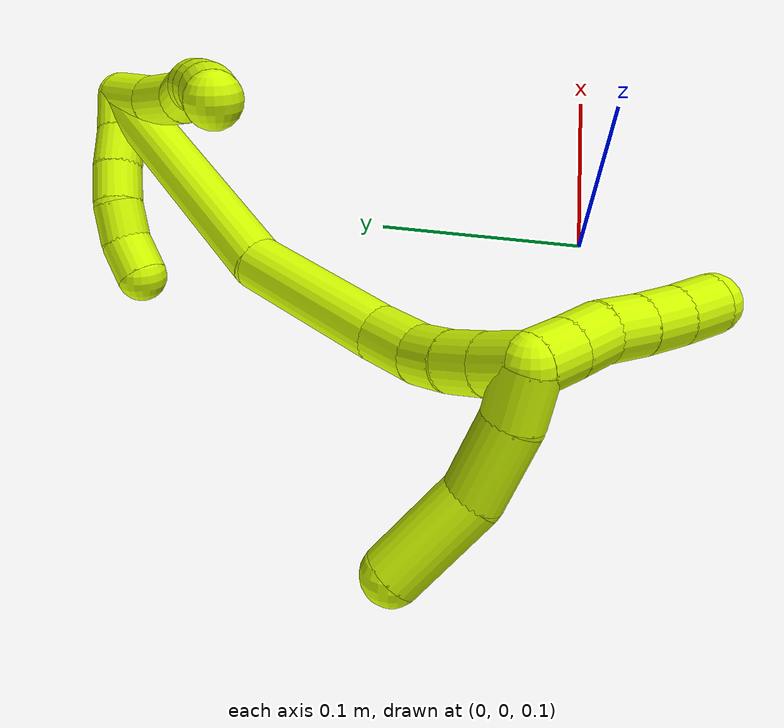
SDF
<sdf version="1.7">
 <world name="default">
  <model name="15">
   <static>0</static>
   <link name="15">
    <collision name="collision-cylinder-e_1_2_8">
     <pose>-0.010584 -0.012186 0.001333 1.46181 -0.712205 -0.643766</pose>
     <geometry><cylinder><radius>0.0125</radius><length>0.032391</length></cylinder></geometry>
     <surface>
      <friction><ode><mu>1.16</mu><mu2>1.16</mu2><slip1>0</slip1><slip2>0</slip2></ode></friction>
      <contact><ode><kp>1e+06</kp><kd>1</kd><max_vel>0</max_vel><min_depth>0.001</min_depth></ode></contact>
     </surface>
    </collision>
    <visual name="visual-cylinder-e_1_2_8">
     <pose>-0.010584 -0.012186 0.001333 1.46181 -0.712205 -0.643766</pose>
     <geometry><cylinder><radius>0.0125</radius><length>0.032391</length></cylinder></geometry>
     <material><ambient>0.835294 1 0 1</ambient></material>
    </visual>
    <collision name="collision-cylinder-e_2_8_9">
     <pose>-0.031523 -0.03557 0.005963 1.28455 -0.725649 -0.553422</pose>
     <geometry><cylinder><radius>0.0125</radius><length>0.031208</length></cylinder></geometry>
     <surface>
      <friction><ode><mu>1.16</mu><mu2>1.16</mu2><slip1>0</slip1><slip2>0</slip2></ode></friction>
      <contact><ode><kp>1e+06</kp><kd>1</kd><max_vel>0</max_vel><min_depth>0.001</min_depth></ode></contact>
     </surface>
    </collision>
    <visual name="visual-cylinder-e_2_8_9">
     <pose>-0.031523 -0.03557 0.005963 1.28455 -0.725649 -0.553422</pose>
     <geometry><cylinder><radius>0.0125</radius><length>0.031208</length></cylinder></geometry>
     <material><ambient>0.835294 1 0 1</ambient></material>
    </visual>
    <collision name="collision-cylinder-e_3_9_10">
     <pose>-0.051413 -0.052529 0.01399 0.883209 -0.907239 -0.453038</pose>
     <geometry><cylinder><radius>0.0125</radius><length>0.024207</length></cylinder></geometry>
     <surface>
      <friction><ode><mu>1.16</mu><mu2>1.16</mu2><slip1>0</slip1><slip2>0</slip2></ode></friction>
      <contact><ode><kp>1e+06</kp><kd>1</kd><max_vel>0</max_vel><min_depth>0.001</min_depth></ode></contact>
     </surface>
    </collision>
    <visual name="visual-cylinder-e_3_9_10">
     <pose>-0.051413 -0.052529 0.01399 0.883209 -0.907239 -0.453038</pose>
     <geometry><cylinder><radius>0.0125</radius><length>0.024207</length></cylinder></geometry>
     <material><ambient>0.835294 1 0 1</ambient></material>
    </visual>
    <collision name="collision-cylinder-e_4_10_11">
     <pose>-0.069967 -0.062356 0.020258 1.20957 -1.12166 -0.819164</pose>
     <geometry><cylinder><radius>0.0125</radius><length>0.020022</length></cylinder></geometry>
     <surface>
      <friction><ode><mu>1.16</mu><mu2>1.16</mu2><slip1>0</slip1><slip2>0</slip2></ode></friction>
      <contact><ode><kp>1e+06</kp><kd>1</kd><max_vel>0</max_vel><min_depth>0.001</min_depth></ode></contact>
     </surface>
    </collision>
    <visual name="visual-cylinder-e_4_10_11">
     <pose>-0.069967 -0.062356 0.020258 1.20957 -1.12166 -0.819164</pose>
     <geometry><cylinder><radius>0.0125</radius><length>0.020022</length></cylinder></geometry>
     <material><ambient>0.835294 1 0 1</ambient></material>
    </visual>
    <collision name="collision-cylinder-e_5_11_12">
     <pose>-0.08822 -0.070679 0.02291 1.31432 -1.1261 -0.906407</pose>
     <geometry><cylinder><radius>0.0125</radius><length>0.02046</length></cylinder></geometry>
     <surface>
      <friction><ode><mu>1.16</mu><mu2>1.16</mu2><slip1>0</slip1><slip2>0</slip2></ode></friction>
      <contact><ode><kp>1e+06</kp><kd>1</kd><max_vel>0</max_vel><min_depth>0.001</min_depth></ode></contact>
     </surface>
    </collision>
    <visual name="visual-cylinder-e_5_11_12">
     <pose>-0.08822 -0.070679 0.02291 1.31432 -1.1261 -0.906407</pose>
     <geometry><cylinder><radius>0.0125</radius><length>0.02046</length></cylinder></geometry>
     <material><ambient>0.835294 1 0 1</ambient></material>
    </visual>
    <collision name="collision-cylinder-e_6_12_6">
     <pose>-0.107568 -0.078871 0.024315 1.49766 -1.19878 -1.13154</pose>
     <geometry><cylinder><radius>0.0125</radius><length>0.021712</length></cylinder></geometry>
     <surface>
      <friction><ode><mu>1.16</mu><mu2>1.16</mu2><slip1>0</slip1><slip2>0</slip2></ode></friction>
      <contact><ode><kp>1e+06</kp><kd>1</kd><max_vel>0</max_vel><min_depth>0.001</min_depth></ode></contact>
     </surface>
    </collision>
    <visual name="visual-cylinder-e_6_12_6">
     <pose>-0.107568 -0.078871 0.024315 1.49766 -1.19878 -1.13154</pose>
     <geometry><cylinder><radius>0.0125</radius><length>0.021712</length></cylinder></geometry>
     <material><ambient>0.835294 1 0 1</ambient></material>
    </visual>
    <collision name="collision-cylinder-e_1_2_13">
     <pose>-0.005798 -0.001255 -0.008051 2.98696 -0.618444 -2.66577</pose>
     <geometry><cylinder><radius>0.0125</radius><length>0.02</length></cylinder></geometry>
     <surface>
      <friction><ode><mu>1.16</mu><mu2>1.16</mu2><slip1>0</slip1><slip2>0</slip2></ode></friction>
      <contact><ode><kp>1e+06</kp><kd>1</kd><max_vel>0</max_vel><min_depth>0.001</min_depth></ode></contact>
     </surface>
    </collision>
    <visual name="visual-cylinder-e_1_2_13">
     <pose>-0.005798 -0.001255 -0.008051 2.98696 -0.618444 -2.66577</pose>
     <geometry><cylinder><radius>0.0125</radius><length>0.02</length></cylinder></geometry>
     <material><ambient>0.835294 1 0 1</ambient></material>
    </visual>
    <collision name="collision-cylinder-e_2_13_14">
     <pose>-0.01765 -0.002764 -0.024056 3.10959 -0.650388 -3.04675</pose>
     <geometry><cylinder><radius>0.0125</radius><length>0.02</length></cylinder></geometry>
     <surface>
      <friction><ode><mu>1.16</mu><mu2>1.16</mu2><slip1>0</slip1><slip2>0</slip2></ode></friction>
      <contact><ode><kp>1e+06</kp><kd>1</kd><max_vel>0</max_vel><min_depth>0.001</min_depth></ode></contact>
     </surface>
    </collision>
    <visual name="visual-cylinder-e_2_13_14">
     <pose>-0.01765 -0.002764 -0.024056 3.10959 -0.650388 -3.04675</pose>
     <geometry><cylinder><radius>0.0125</radius><length>0.02</length></cylinder></geometry>
     <material><ambient>0.835294 1 0 1</ambient></material>
    </visual>
    <collision name="collision-cylinder-e_3_14_15">
     <pose>-0.029581 -0.004536 -0.039958 2.953 -0.628041 -2.57483</pose>
     <geometry><cylinder><radius>0.0125</radius><length>0.02</length></cylinder></geometry>
     <surface>
      <friction><ode><mu>1.16</mu><mu2>1.16</mu2><slip1>0</slip1><slip2>0</slip2></ode></friction>
      <contact><ode><kp>1e+06</kp><kd>1</kd><max_vel>0</max_vel><min_depth>0.001</min_depth></ode></contact>
     </surface>
    </collision>
    <visual name="visual-cylinder-e_3_14_15">
     <pose>-0.029581 -0.004536 -0.039958 2.953 -0.628041 -2.57483</pose>
     <geometry><cylinder><radius>0.0125</radius><length>0.02</length></cylinder></geometry>
     <material><ambient>0.835294 1 0 1</ambient></material>
    </visual>
    <collision name="collision-cylinder-e_4_15_16">
     <pose>-0.039409 -0.008799 -0.056673 2.83808 -0.406304 -1.86434</pose>
     <geometry><cylinder><radius>0.0125</radius><length>0.02</length></cylinder></geometry>
     <surface>
      <friction><ode><mu>1.16</mu><mu2>1.16</mu2><slip1>0</slip1><slip2>0</slip2></ode></friction>
      <contact><ode><kp>1e+06</kp><kd>1</kd><max_vel>0</max_vel><min_depth>0.001</min_depth></ode></contact>
     </surface>
    </collision>
    <visual name="visual-cylinder-e_4_15_16">
     <pose>-0.039409 -0.008799 -0.056673 2.83808 -0.406304 -1.86434</pose>
     <geometry><cylinder><radius>0.0125</radius><length>0.02</length></cylinder></geometry>
     <material><ambient>0.835294 1 0 1</ambient></material>
    </visual>
    <collision name="collision-cylinder-e_5_16_5">
     <pose>-0.047928 -0.016663 -0.072715 2.52856 -0.47425 -1.30429</pose>
     <geometry><cylinder><radius>0.0125</radius><length>0.02</length></cylinder></geometry>
     <surface>
      <friction><ode><mu>1.16</mu><mu2>1.16</mu2><slip1>0</slip1><slip2>0</slip2></ode></friction>
      <contact><ode><kp>1e+06</kp><kd>1</kd><max_vel>0</max_vel><min_depth>0.001</min_depth></ode></contact>
     </surface>
    </collision>
    <visual name="visual-cylinder-e_5_16_5">
     <pose>-0.047928 -0.016663 -0.072715 2.52856 -0.47425 -1.30429</pose>
     <geometry><cylinder><radius>0.0125</radius><length>0.02</length></cylinder></geometry>
     <material><ambient>0.835294 1 0 1</ambient></material>
    </visual>
    <collision name="collision-cylinder-e_1_2_17">
     <pose>-0.044622 -0.045628 -0.027819 2.11831 -0.695721 -1.14678</pose>
     <geometry><cylinder><radius>0.0125</radius><length>0.13924</length></cylinder></geometry>
     <surface>
      <friction><ode><mu>1.16</mu><mu2>1.16</mu2><slip1>0</slip1><slip2>0</slip2></ode></friction>
      <contact><ode><kp>1e+06</kp><kd>1</kd><max_vel>0</max_vel><min_depth>0.001</min_depth></ode></contact>
     </surface>
    </collision>
    <visual name="visual-cylinder-e_1_2_17">
     <pose>-0.044622 -0.045628 -0.027819 2.11831 -0.695721 -1.14678</pose>
     <geometry><cylinder><radius>0.0125</radius><length>0.13924</length></cylinder></geometry>
     <material><ambient>0.835294 1 0 1</ambient></material>
    </visual>
    <collision name="collision-cylinder-e_2_17_18">
     <pose>-0.109554 -0.121523 -0.062423 1.79132 -0.579716 -0.713193</pose>
     <geometry><cylinder><radius>0.0125</radius><length>0.074151</length></cylinder></geometry>
     <surface>
      <friction><ode><mu>1.16</mu><mu2>1.16</mu2><slip1>0</slip1><slip2>0</slip2></ode></friction>
      <contact><ode><kp>1e+06</kp><kd>1</kd><max_vel>0</max_vel><min_depth>0.001</min_depth></ode></contact>
     </surface>
    </collision>
    <visual name="visual-cylinder-e_2_17_18">
     <pose>-0.109554 -0.121523 -0.062423 1.79132 -0.579716 -0.713193</pose>
     <geometry><cylinder><radius>0.0125</radius><length>0.074151</length></cylinder></geometry>
     <material><ambient>0.835294 1 0 1</ambient></material>
    </visual>
    <collision name="collision-cylinder-e_3_18_19">
     <pose>-0.139112 -0.161171 -0.069081 1.55728 -0.778237 -0.768796</pose>
     <geometry><cylinder><radius>0.0125</radius><length>0.026348</length></cylinder></geometry>
     <surface>
      <friction><ode><mu>1.16</mu><mu2>1.16</mu2><slip1>0</slip1><slip2>0</slip2></ode></friction>
      <contact><ode><kp>1e+06</kp><kd>1</kd><max_vel>0</max_vel><min_depth>0.001</min_depth></ode></contact>
     </surface>
    </collision>
    <visual name="visual-cylinder-e_3_18_19">
     <pose>-0.139112 -0.161171 -0.069081 1.55728 -0.778237 -0.768796</pose>
     <geometry><cylinder><radius>0.0125</radius><length>0.026348</length></cylinder></geometry>
     <material><ambient>0.835294 1 0 1</ambient></material>
    </visual>
    <collision name="collision-cylinder-e_4_19_20">
     <pose>-0.155655 -0.177079 -0.066585 1.22273 -0.810026 -0.583845</pose>
     <geometry><cylinder><radius>0.0125</radius><length>0.020144</length></cylinder></geometry>
     <surface>
      <friction><ode><mu>1.16</mu><mu2>1.16</mu2><slip1>0</slip1><slip2>0</slip2></ode></friction>
      <contact><ode><kp>1e+06</kp><kd>1</kd><max_vel>0</max_vel><min_depth>0.001</min_depth></ode></contact>
     </surface>
    </collision>
    <visual name="visual-cylinder-e_4_19_20">
     <pose>-0.155655 -0.177079 -0.066585 1.22273 -0.810026 -0.583845</pose>
     <geometry><cylinder><radius>0.0125</radius><length>0.020144</length></cylinder></geometry>
     <material><ambient>0.835294 1 0 1</ambient></material>
    </visual>
    <collision name="collision-cylinder-e_5_20_21">
     <pose>-0.169383 -0.190731 -0.061208 1.17107 -0.693854 -0.470612</pose>
     <geometry><cylinder><radius>0.0125</radius><length>0.020117</length></cylinder></geometry>
     <surface>
      <friction><ode><mu>1.16</mu><mu2>1.16</mu2><slip1>0</slip1><slip2>0</slip2></ode></friction>
      <contact><ode><kp>1e+06</kp><kd>1</kd><max_vel>0</max_vel><min_depth>0.001</min_depth></ode></contact>
     </surface>
    </collision>
    <visual name="visual-cylinder-e_5_20_21">
     <pose>-0.169383 -0.190731 -0.061208 1.17107 -0.693854 -0.470612</pose>
     <geometry><cylinder><radius>0.0125</radius><length>0.020117</length></cylinder></geometry>
     <material><ambient>0.835294 1 0 1</ambient></material>
    </visual>
    <collision name="collision-cylinder-e_6_21_1">
     <pose>-0.182094 -0.204871 -0.05483 1.12332 -0.678841 -0.437262</pose>
     <geometry><cylinder><radius>0.0125</radius><length>0.020001</length></cylinder></geometry>
     <surface>
      <friction><ode><mu>1.16</mu><mu2>1.16</mu2><slip1>0</slip1><slip2>0</slip2></ode></friction>
      <contact><ode><kp>1e+06</kp><kd>1</kd><max_vel>0</max_vel><min_depth>0.001</min_depth></ode></contact>
     </surface>
    </collision>
    <visual name="visual-cylinder-e_6_21_1">
     <pose>-0.182094 -0.204871 -0.05483 1.12332 -0.678841 -0.437262</pose>
     <geometry><cylinder><radius>0.0125</radius><length>0.020001</length></cylinder></geometry>
     <material><ambient>0.835294 1 0 1</ambient></material>
    </visual>
    <collision name="collision-cylinder-e_1_1_22">
     <pose>-0.180863 -0.21849 -0.051552 1.58433 0.849599 0.859805</pose>
     <geometry><cylinder><radius>0.0125</radius><length>0.02</length></cylinder></geometry>
     <surface>
      <friction><ode><mu>1.16</mu><mu2>1.16</mu2><slip1>0</slip1><slip2>0</slip2></ode></friction>
      <contact><ode><kp>1e+06</kp><kd>1</kd><max_vel>0</max_vel><min_depth>0.001</min_depth></ode></contact>
     </surface>
    </collision>
    <visual name="visual-cylinder-e_1_1_22">
     <pose>-0.180863 -0.21849 -0.051552 1.58433 0.849599 0.859805</pose>
     <geometry><cylinder><radius>0.0125</radius><length>0.02</length></cylinder></geometry>
     <material><ambient>0.835294 1 0 1</ambient></material>
    </visual>
    <collision name="collision-cylinder-e_2_22_23">
     <pose>-0.165895 -0.231744 -0.051275 1.51584 0.841698 0.801446</pose>
     <geometry><cylinder><radius>0.0125</radius><length>0.02</length></cylinder></geometry>
     <surface>
      <friction><ode><mu>1.16</mu><mu2>1.16</mu2><slip1>0</slip1><slip2>0</slip2></ode></friction>
      <contact><ode><kp>1e+06</kp><kd>1</kd><max_vel>0</max_vel><min_depth>0.001</min_depth></ode></contact>
     </surface>
    </collision>
    <visual name="visual-cylinder-e_2_22_23">
     <pose>-0.165895 -0.231744 -0.051275 1.51584 0.841698 0.801446</pose>
     <geometry><cylinder><radius>0.0125</radius><length>0.02</length></cylinder></geometry>
     <material><ambient>0.835294 1 0 1</ambient></material>
    </visual>
    <collision name="collision-cylinder-e_3_23_24">
     <pose>-0.152336 -0.246279 -0.051709 1.67187 0.656194 0.720466</pose>
     <geometry><cylinder><radius>0.0125</radius><length>0.02</length></cylinder></geometry>
     <surface>
      <friction><ode><mu>1.16</mu><mu2>1.16</mu2><slip1>0</slip1><slip2>0</slip2></ode></friction>
      <contact><ode><kp>1e+06</kp><kd>1</kd><max_vel>0</max_vel><min_depth>0.001</min_depth></ode></contact>
     </surface>
    </collision>
    <visual name="visual-cylinder-e_3_23_24">
     <pose>-0.152336 -0.246279 -0.051709 1.67187 0.656194 0.720466</pose>
     <geometry><cylinder><radius>0.0125</radius><length>0.02</length></cylinder></geometry>
     <material><ambient>0.835294 1 0 1</ambient></material>
    </visual>
    <collision name="collision-cylinder-e_4_24_25">
     <pose>-0.139966 -0.261947 -0.052781 1.60576 0.677656 0.699881</pose>
     <geometry><cylinder><radius>0.0125</radius><length>0.02</length></cylinder></geometry>
     <surface>
      <friction><ode><mu>1.16</mu><mu2>1.16</mu2><slip1>0</slip1><slip2>0</slip2></ode></friction>
      <contact><ode><kp>1e+06</kp><kd>1</kd><max_vel>0</max_vel><min_depth>0.001</min_depth></ode></contact>
     </surface>
    </collision>
    <visual name="visual-cylinder-e_4_24_25">
     <pose>-0.139966 -0.261947 -0.052781 1.60576 0.677656 0.699881</pose>
     <geometry><cylinder><radius>0.0125</radius><length>0.02</length></cylinder></geometry>
     <material><ambient>0.835294 1 0 1</ambient></material>
    </visual>
    <collision name="collision-cylinder-e_5_25_4">
     <pose>-0.127628 -0.277666 -0.052569 1.5099 0.652081 0.615995</pose>
     <geometry><cylinder><radius>0.0125</radius><length>0.02</length></cylinder></geometry>
     <surface>
      <friction><ode><mu>1.16</mu><mu2>1.16</mu2><slip1>0</slip1><slip2>0</slip2></ode></friction>
      <contact><ode><kp>1e+06</kp><kd>1</kd><max_vel>0</max_vel><min_depth>0.001</min_depth></ode></contact>
     </surface>
    </collision>
    <visual name="visual-cylinder-e_5_25_4">
     <pose>-0.127628 -0.277666 -0.052569 1.5099 0.652081 0.615995</pose>
     <geometry><cylinder><radius>0.0125</radius><length>0.02</length></cylinder></geometry>
     <material><ambient>0.835294 1 0 1</ambient></material>
    </visual>
    <collision name="collision-cylinder-e_1_1_26">
     <pose>-0.189538 -0.209556 -0.06224 -2.92852 -0.105206 0.914999</pose>
     <geometry><cylinder><radius>0.0125</radius><length>0.022176</length></cylinder></geometry>
     <surface>
      <friction><ode><mu>1.16</mu><mu2>1.16</mu2><slip1>0</slip1><slip2>0</slip2></ode></friction>
      <contact><ode><kp>1e+06</kp><kd>1</kd><max_vel>0</max_vel><min_depth>0.001</min_depth></ode></contact>
     </surface>
    </collision>
    <visual name="visual-cylinder-e_1_1_26">
     <pose>-0.189538 -0.209556 -0.06224 -2.92852 -0.105206 0.914999</pose>
     <geometry><cylinder><radius>0.0125</radius><length>0.022176</length></cylinder></geometry>
     <material><ambient>0.835294 1 0 1</ambient></material>
    </visual>
    <collision name="collision-cylinder-e_2_26_27">
     <pose>-0.19209 -0.20068 -0.088505 -2.74178 -0.082332 0.401115</pose>
     <geometry><cylinder><radius>0.0125</radius><length>0.033742</length></cylinder></geometry>
     <surface>
      <friction><ode><mu>1.16</mu><mu2>1.16</mu2><slip1>0</slip1><slip2>0</slip2></ode></friction>
      <contact><ode><kp>1e+06</kp><kd>1</kd><max_vel>0</max_vel><min_depth>0.001</min_depth></ode></contact>
     </surface>
    </collision>
    <visual name="visual-cylinder-e_2_26_27">
     <pose>-0.19209 -0.20068 -0.088505 -2.74178 -0.082332 0.401115</pose>
     <geometry><cylinder><radius>0.0125</radius><length>0.033742</length></cylinder></geometry>
     <material><ambient>0.835294 1 0 1</ambient></material>
    </visual>
    <collision name="collision-cylinder-e_3_27_3">
     <pose>-0.197112 -0.179598 -0.120156 -2.40914 -0.165687 0.426418</pose>
     <geometry><cylinder><radius>0.0125</radius><length>0.044083</length></cylinder></geometry>
     <surface>
      <friction><ode><mu>1.16</mu><mu2>1.16</mu2><slip1>0</slip1><slip2>0</slip2></ode></friction>
      <contact><ode><kp>1e+06</kp><kd>1</kd><max_vel>0</max_vel><min_depth>0.001</min_depth></ode></contact>
     </surface>
    </collision>
    <visual name="visual-cylinder-e_3_27_3">
     <pose>-0.197112 -0.179598 -0.120156 -2.40914 -0.165687 0.426418</pose>
     <geometry><cylinder><radius>0.0125</radius><length>0.044083</length></cylinder></geometry>
     <material><ambient>0.835294 1 0 1</ambient></material>
    </visual>
    <collision name="collision-sphere-3">
     <pose>-0.200748 -0.165061 -0.13632 0 -0 0</pose>
     <geometry><sphere><radius>0.0125</radius></sphere></geometry>
     <surface>
      <friction><ode><mu>1.16</mu><mu2>1.16</mu2><slip1>0</slip1><slip2>0</slip2></ode></friction>
      <contact><ode><kp>1e+06</kp><kd>1</kd><max_vel>0</max_vel><min_depth>0.001</min_depth></ode></contact>
     </surface>
    </collision>
    <visual name="visual-sphere-3">
     <pose>-0.200748 -0.165061 -0.13632 0 -0 0</pose>
     <geometry><sphere><radius>0.0125</radius></sphere></geometry>
     <material><ambient>0.835294 1 0 1</ambient></material>
    </visual>
    <collision name="collision-sphere-27">
     <pose>-0.193477 -0.194135 -0.103992 0 -0 0</pose>
     <geometry><sphere><radius>0.0125</radius></sphere></geometry>
     <surface>
      <friction><ode><mu>1.16</mu><mu2>1.16</mu2><slip1>0</slip1><slip2>0</slip2></ode></friction>
      <contact><ode><kp>1e+06</kp><kd>1</kd><max_vel>0</max_vel><min_depth>0.001</min_depth></ode></contact>
     </surface>
    </collision>
    <visual name="visual-sphere-27">
     <pose>-0.193477 -0.194135 -0.103992 0 -0 0</pose>
     <geometry><sphere><radius>0.0125</radius></sphere></geometry>
     <material><ambient>0.835294 1 0 1</ambient></material>
    </visual>
    <collision name="collision-sphere-26">
     <pose>-0.190702 -0.207224 -0.073017 0 -0 0</pose>
     <geometry><sphere><radius>0.0125</radius></sphere></geometry>
     <surface>
      <friction><ode><mu>1.16</mu><mu2>1.16</mu2><slip1>0</slip1><slip2>0</slip2></ode></friction>
      <contact><ode><kp>1e+06</kp><kd>1</kd><max_vel>0</max_vel><min_depth>0.001</min_depth></ode></contact>
     </surface>
    </collision>
    <visual name="visual-sphere-26">
     <pose>-0.190702 -0.207224 -0.073017 0 -0 0</pose>
     <geometry><sphere><radius>0.0125</radius></sphere></geometry>
     <material><ambient>0.835294 1 0 1</ambient></material>
    </visual>
    <collision name="collision-sphere-4">
     <pose>-0.121559 -0.2856 -0.052086 0 -0 0</pose>
     <geometry><sphere><radius>0.0125</radius></sphere></geometry>
     <surface>
      <friction><ode><mu>1.16</mu><mu2>1.16</mu2><slip1>0</slip1><slip2>0</slip2></ode></friction>
      <contact><ode><kp>1e+06</kp><kd>1</kd><max_vel>0</max_vel><min_depth>0.001</min_depth></ode></contact>
     </surface>
    </collision>
    <visual name="visual-sphere-4">
     <pose>-0.121559 -0.2856 -0.052086 0 -0 0</pose>
     <geometry><sphere><radius>0.0125</radius></sphere></geometry>
     <material><ambient>0.835294 1 0 1</ambient></material>
    </visual>
    <collision name="collision-sphere-25">
     <pose>-0.133696 -0.269733 -0.053053 0 -0 0</pose>
     <geometry><sphere><radius>0.0125</radius></sphere></geometry>
     <surface>
      <friction><ode><mu>1.16</mu><mu2>1.16</mu2><slip1>0</slip1><slip2>0</slip2></ode></friction>
      <contact><ode><kp>1e+06</kp><kd>1</kd><max_vel>0</max_vel><min_depth>0.001</min_depth></ode></contact>
     </surface>
    </collision>
    <visual name="visual-sphere-25">
     <pose>-0.133696 -0.269733 -0.053053 0 -0 0</pose>
     <geometry><sphere><radius>0.0125</radius></sphere></geometry>
     <material><ambient>0.835294 1 0 1</ambient></material>
    </visual>
    <collision name="collision-sphere-24">
     <pose>-0.146235 -0.254162 -0.052508 0 -0 0</pose>
     <geometry><sphere><radius>0.0125</radius></sphere></geometry>
     <surface>
      <friction><ode><mu>1.16</mu><mu2>1.16</mu2><slip1>0</slip1><slip2>0</slip2></ode></friction>
      <contact><ode><kp>1e+06</kp><kd>1</kd><max_vel>0</max_vel><min_depth>0.001</min_depth></ode></contact>
     </surface>
    </collision>
    <visual name="visual-sphere-24">
     <pose>-0.146235 -0.254162 -0.052508 0 -0 0</pose>
     <geometry><sphere><radius>0.0125</radius></sphere></geometry>
     <material><ambient>0.835294 1 0 1</ambient></material>
    </visual>
    <collision name="collision-sphere-23">
     <pose>-0.158438 -0.238396 -0.050909 0 -0 0</pose>
     <geometry><sphere><radius>0.0125</radius></sphere></geometry>
     <surface>
      <friction><ode><mu>1.16</mu><mu2>1.16</mu2><slip1>0</slip1><slip2>0</slip2></ode></friction>
      <contact><ode><kp>1e+06</kp><kd>1</kd><max_vel>0</max_vel><min_depth>0.001</min_depth></ode></contact>
     </surface>
    </collision>
    <visual name="visual-sphere-23">
     <pose>-0.158438 -0.238396 -0.050909 0 -0 0</pose>
     <geometry><sphere><radius>0.0125</radius></sphere></geometry>
     <material><ambient>0.835294 1 0 1</ambient></material>
    </visual>
    <collision name="collision-sphere-22">
     <pose>-0.173353 -0.225092 -0.051641 0 -0 0</pose>
     <geometry><sphere><radius>0.0125</radius></sphere></geometry>
     <surface>
      <friction><ode><mu>1.16</mu><mu2>1.16</mu2><slip1>0</slip1><slip2>0</slip2></ode></friction>
      <contact><ode><kp>1e+06</kp><kd>1</kd><max_vel>0</max_vel><min_depth>0.001</min_depth></ode></contact>
     </surface>
    </collision>
    <visual name="visual-sphere-22">
     <pose>-0.173353 -0.225092 -0.051641 0 -0 0</pose>
     <geometry><sphere><radius>0.0125</radius></sphere></geometry>
     <material><ambient>0.835294 1 0 1</ambient></material>
    </visual>
    <collision name="collision-sphere-1">
     <pose>-0.188373 -0.211888 -0.051463 0 -0 0</pose>
     <geometry><sphere><radius>0.0125</radius></sphere></geometry>
     <surface>
      <friction><ode><mu>1.16</mu><mu2>1.16</mu2><slip1>0</slip1><slip2>0</slip2></ode></friction>
      <contact><ode><kp>1e+06</kp><kd>1</kd><max_vel>0</max_vel><min_depth>0.001</min_depth></ode></contact>
     </surface>
    </collision>
    <visual name="visual-sphere-1">
     <pose>-0.188373 -0.211888 -0.051463 0 -0 0</pose>
     <geometry><sphere><radius>0.0125</radius></sphere></geometry>
     <material><ambient>0.835294 1 0 1</ambient></material>
    </visual>
    <collision name="collision-sphere-21">
     <pose>-0.175815 -0.197854 -0.058198 0 -0 0</pose>
     <geometry><sphere><radius>0.0125</radius></sphere></geometry>
     <surface>
      <friction><ode><mu>1.16</mu><mu2>1.16</mu2><slip1>0</slip1><slip2>0</slip2></ode></friction>
      <contact><ode><kp>1e+06</kp><kd>1</kd><max_vel>0</max_vel><min_depth>0.001</min_depth></ode></contact>
     </surface>
    </collision>
    <visual name="visual-sphere-21">
     <pose>-0.175815 -0.197854 -0.058198 0 -0 0</pose>
     <geometry><sphere><radius>0.0125</radius></sphere></geometry>
     <material><ambient>0.835294 1 0 1</ambient></material>
    </visual>
    <collision name="collision-sphere-12">
     <pose>-0.097455 -0.074936 0.024027 0 -0 0</pose>
     <geometry><sphere><radius>0.0125</radius></sphere></geometry>
     <surface>
      <friction><ode><mu>1.16</mu><mu2>1.16</mu2><slip1>0</slip1><slip2>0</slip2></ode></friction>
      <contact><ode><kp>1e+06</kp><kd>1</kd><max_vel>0</max_vel><min_depth>0.001</min_depth></ode></contact>
     </surface>
    </collision>
    <visual name="visual-sphere-12">
     <pose>-0.097455 -0.074936 0.024027 0 -0 0</pose>
     <geometry><sphere><radius>0.0125</radius></sphere></geometry>
     <material><ambient>0.835294 1 0 1</ambient></material>
    </visual>
    <collision name="collision-sphere-11">
     <pose>-0.078985 -0.066422 0.021794 0 -0 0</pose>
     <geometry><sphere><radius>0.0125</radius></sphere></geometry>
     <surface>
      <friction><ode><mu>1.16</mu><mu2>1.16</mu2><slip1>0</slip1><slip2>0</slip2></ode></friction>
      <contact><ode><kp>1e+06</kp><kd>1</kd><max_vel>0</max_vel><min_depth>0.001</min_depth></ode></contact>
     </surface>
    </collision>
    <visual name="visual-sphere-11">
     <pose>-0.078985 -0.066422 0.021794 0 -0 0</pose>
     <geometry><sphere><radius>0.0125</radius></sphere></geometry>
     <material><ambient>0.835294 1 0 1</ambient></material>
    </visual>
    <collision name="collision-sphere-10">
     <pose>-0.060948 -0.05829 0.018721 0 -0 0</pose>
     <geometry><sphere><radius>0.0125</radius></sphere></geometry>
     <surface>
      <friction><ode><mu>1.16</mu><mu2>1.16</mu2><slip1>0</slip1><slip2>0</slip2></ode></friction>
      <contact><ode><kp>1e+06</kp><kd>1</kd><max_vel>0</max_vel><min_depth>0.001</min_depth></ode></contact>
     </surface>
    </collision>
    <visual name="visual-sphere-10">
     <pose>-0.060948 -0.05829 0.018721 0 -0 0</pose>
     <geometry><sphere><radius>0.0125</radius></sphere></geometry>
     <material><ambient>0.835294 1 0 1</ambient></material>
    </visual>
    <collision name="collision-sphere-9">
     <pose>-0.041878 -0.046768 0.009259 0 -0 0</pose>
     <geometry><sphere><radius>0.0125</radius></sphere></geometry>
     <surface>
      <friction><ode><mu>1.16</mu><mu2>1.16</mu2><slip1>0</slip1><slip2>0</slip2></ode></friction>
      <contact><ode><kp>1e+06</kp><kd>1</kd><max_vel>0</max_vel><min_depth>0.001</min_depth></ode></contact>
     </surface>
    </collision>
    <visual name="visual-sphere-9">
     <pose>-0.041878 -0.046768 0.009259 0 -0 0</pose>
     <geometry><sphere><radius>0.0125</radius></sphere></geometry>
     <material><ambient>0.835294 1 0 1</ambient></material>
    </visual>
    <collision name="collision-sphere-2">
     <geometry><sphere><radius>0.0125</radius></sphere></geometry>
     <surface>
      <friction><ode><mu>1.16</mu><mu2>1.16</mu2><slip1>0</slip1><slip2>0</slip2></ode></friction>
      <contact><ode><kp>1e+06</kp><kd>1</kd><max_vel>0</max_vel><min_depth>0.001</min_depth></ode></contact>
     </surface>
    </collision>
    <visual name="visual-sphere-2">
     <geometry><sphere><radius>0.0125</radius></sphere></geometry>
     <material><ambient>0.835294 1 0 1</ambient></material>
    </visual>
    <collision name="collision-sphere-19">
     <pose>-0.14836 -0.170551 -0.068954 0 -0 0</pose>
     <geometry><sphere><radius>0.0125</radius></sphere></geometry>
     <surface>
      <friction><ode><mu>1.16</mu><mu2>1.16</mu2><slip1>0</slip1><slip2>0</slip2></ode></friction>
      <contact><ode><kp>1e+06</kp><kd>1</kd><max_vel>0</max_vel><min_depth>0.001</min_depth></ode></contact>
     </surface>
    </collision>
    <visual name="visual-sphere-19">
     <pose>-0.14836 -0.170551 -0.068954 0 -0 0</pose>
     <geometry><sphere><radius>0.0125</radius></sphere></geometry>
     <material><ambient>0.835294 1 0 1</ambient></material>
    </visual>
    <collision name="collision-sphere-8">
     <pose>-0.021167 -0.024372 0.002667 0 -0 0</pose>
     <geometry><sphere><radius>0.0125</radius></sphere></geometry>
     <surface>
      <friction><ode><mu>1.16</mu><mu2>1.16</mu2><slip1>0</slip1><slip2>0</slip2></ode></friction>
      <contact><ode><kp>1e+06</kp><kd>1</kd><max_vel>0</max_vel><min_depth>0.001</min_depth></ode></contact>
     </surface>
    </collision>
    <visual name="visual-sphere-8">
     <pose>-0.021167 -0.024372 0.002667 0 -0 0</pose>
     <geometry><sphere><radius>0.0125</radius></sphere></geometry>
     <material><ambient>0.835294 1 0 1</ambient></material>
    </visual>
    <collision name="collision-sphere-6">
     <pose>-0.117682 -0.082807 0.024603 0 -0 0</pose>
     <geometry><sphere><radius>0.0125</radius></sphere></geometry>
     <surface>
      <friction><ode><mu>1.16</mu><mu2>1.16</mu2><slip1>0</slip1><slip2>0</slip2></ode></friction>
      <contact><ode><kp>1e+06</kp><kd>1</kd><max_vel>0</max_vel><min_depth>0.001</min_depth></ode></contact>
     </surface>
    </collision>
    <visual name="visual-sphere-6">
     <pose>-0.117682 -0.082807 0.024603 0 -0 0</pose>
     <geometry><sphere><radius>0.0125</radius></sphere></geometry>
     <material><ambient>0.835294 1 0 1</ambient></material>
    </visual>
    <collision name="collision-sphere-13">
     <pose>-0.011595 -0.00251 -0.016101 0 -0 0</pose>
     <geometry><sphere><radius>0.0125</radius></sphere></geometry>
     <surface>
      <friction><ode><mu>1.16</mu><mu2>1.16</mu2><slip1>0</slip1><slip2>0</slip2></ode></friction>
      <contact><ode><kp>1e+06</kp><kd>1</kd><max_vel>0</max_vel><min_depth>0.001</min_depth></ode></contact>
     </surface>
    </collision>
    <visual name="visual-sphere-13">
     <pose>-0.011595 -0.00251 -0.016101 0 -0 0</pose>
     <geometry><sphere><radius>0.0125</radius></sphere></geometry>
     <material><ambient>0.835294 1 0 1</ambient></material>
    </visual>
    <collision name="collision-sphere-14">
     <pose>-0.023705 -0.003019 -0.03201 0 -0 0</pose>
     <geometry><sphere><radius>0.0125</radius></sphere></geometry>
     <surface>
      <friction><ode><mu>1.16</mu><mu2>1.16</mu2><slip1>0</slip1><slip2>0</slip2></ode></friction>
      <contact><ode><kp>1e+06</kp><kd>1</kd><max_vel>0</max_vel><min_depth>0.001</min_depth></ode></contact>
     </surface>
    </collision>
    <visual name="visual-sphere-14">
     <pose>-0.023705 -0.003019 -0.03201 0 -0 0</pose>
     <geometry><sphere><radius>0.0125</radius></sphere></geometry>
     <material><ambient>0.835294 1 0 1</ambient></material>
    </visual>
    <collision name="collision-sphere-15">
     <pose>-0.035456 -0.006053 -0.047907 0 -0 0</pose>
     <geometry><sphere><radius>0.0125</radius></sphere></geometry>
     <surface>
      <friction><ode><mu>1.16</mu><mu2>1.16</mu2><slip1>0</slip1><slip2>0</slip2></ode></friction>
      <contact><ode><kp>1e+06</kp><kd>1</kd><max_vel>0</max_vel><min_depth>0.001</min_depth></ode></contact>
     </surface>
    </collision>
    <visual name="visual-sphere-15">
     <pose>-0.035456 -0.006053 -0.047907 0 -0 0</pose>
     <geometry><sphere><radius>0.0125</radius></sphere></geometry>
     <material><ambient>0.835294 1 0 1</ambient></material>
    </visual>
    <collision name="collision-sphere-16">
     <pose>-0.043361 -0.011544 -0.065439 0 -0 0</pose>
     <geometry><sphere><radius>0.0125</radius></sphere></geometry>
     <surface>
      <friction><ode><mu>1.16</mu><mu2>1.16</mu2><slip1>0</slip1><slip2>0</slip2></ode></friction>
      <contact><ode><kp>1e+06</kp><kd>1</kd><max_vel>0</max_vel><min_depth>0.001</min_depth></ode></contact>
     </surface>
    </collision>
    <visual name="visual-sphere-16">
     <pose>-0.043361 -0.011544 -0.065439 0 -0 0</pose>
     <geometry><sphere><radius>0.0125</radius></sphere></geometry>
     <material><ambient>0.835294 1 0 1</ambient></material>
    </visual>
    <collision name="collision-sphere-5">
     <pose>-0.052494 -0.021781 -0.079991 0 -0 0</pose>
     <geometry><sphere><radius>0.0125</radius></sphere></geometry>
     <surface>
      <friction><ode><mu>1.16</mu><mu2>1.16</mu2><slip1>0</slip1><slip2>0</slip2></ode></friction>
      <contact><ode><kp>1e+06</kp><kd>1</kd><max_vel>0</max_vel><min_depth>0.001</min_depth></ode></contact>
     </surface>
    </collision>
    <visual name="visual-sphere-5">
     <pose>-0.052494 -0.021781 -0.079991 0 -0 0</pose>
     <geometry><sphere><radius>0.0125</radius></sphere></geometry>
     <material><ambient>0.835294 1 0 1</ambient></material>
    </visual>
    <collision name="collision-sphere-17">
     <pose>-0.089245 -0.091256 -0.055638 0 -0 0</pose>
     <geometry><sphere><radius>0.0125</radius></sphere></geometry>
     <surface>
      <friction><ode><mu>1.16</mu><mu2>1.16</mu2><slip1>0</slip1><slip2>0</slip2></ode></friction>
      <contact><ode><kp>1e+06</kp><kd>1</kd><max_vel>0</max_vel><min_depth>0.001</min_depth></ode></contact>
     </surface>
    </collision>
    <visual name="visual-sphere-17">
     <pose>-0.089245 -0.091256 -0.055638 0 -0 0</pose>
     <geometry><sphere><radius>0.0125</radius></sphere></geometry>
     <material><ambient>0.835294 1 0 1</ambient></material>
    </visual>
    <collision name="collision-sphere-18">
     <pose>-0.129863 -0.15179 -0.069208 0 -0 0</pose>
     <geometry><sphere><radius>0.0125</radius></sphere></geometry>
     <surface>
      <friction><ode><mu>1.16</mu><mu2>1.16</mu2><slip1>0</slip1><slip2>0</slip2></ode></friction>
      <contact><ode><kp>1e+06</kp><kd>1</kd><max_vel>0</max_vel><min_depth>0.001</min_depth></ode></contact>
     </surface>
    </collision>
    <visual name="visual-sphere-18">
     <pose>-0.129863 -0.15179 -0.069208 0 -0 0</pose>
     <geometry><sphere><radius>0.0125</radius></sphere></geometry>
     <material><ambient>0.835294 1 0 1</ambient></material>
    </visual>
    <collision name="collision-sphere-20">
     <pose>-0.16295 -0.183607 -0.064217 0 -0 0</pose>
     <geometry><sphere><radius>0.0125</radius></sphere></geometry>
     <surface>
      <friction><ode><mu>1.16</mu><mu2>1.16</mu2><slip1>0</slip1><slip2>0</slip2></ode></friction>
      <contact><ode><kp>1e+06</kp><kd>1</kd><max_vel>0</max_vel><min_depth>0.001</min_depth></ode></contact>
     </surface>
    </collision>
    <visual name="visual-sphere-20">
     <pose>-0.16295 -0.183607 -0.064217 0 -0 0</pose>
     <geometry><sphere><radius>0.0125</radius></sphere></geometry>
     <material><ambient>0.835294 1 0 1</ambient></material>
    </visual>
    <inertial>
     <pose>-0.098419 -0.110712 -0.041215 0 -0 0</pose>
     <mass>0.75</mass>
     <inertia>
      <ixx>-8.6e-05</ixx>
      <ixy>0</ixy>
      <ixz>0</ixz>
      <iyy>-0.000126</iyy>
      <iyz>0</iyz>
      <izz>0.000363</izz>
     </inertia>
    </inertial>
   </link>
   <pose>0.047211 0.244024 0.128502 -0.085935 0.580004 -0.02879</pose>
  </model>
 </world>
</sdf>
